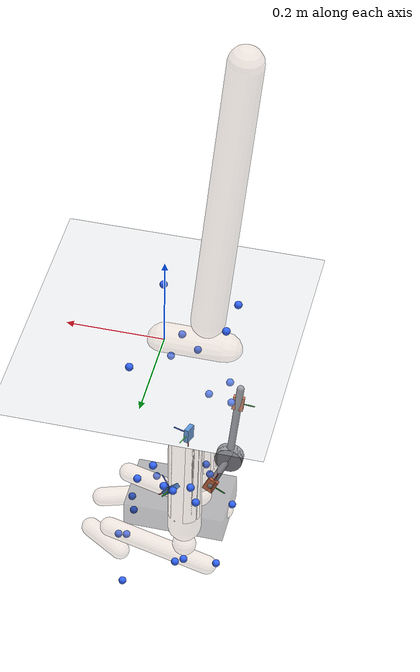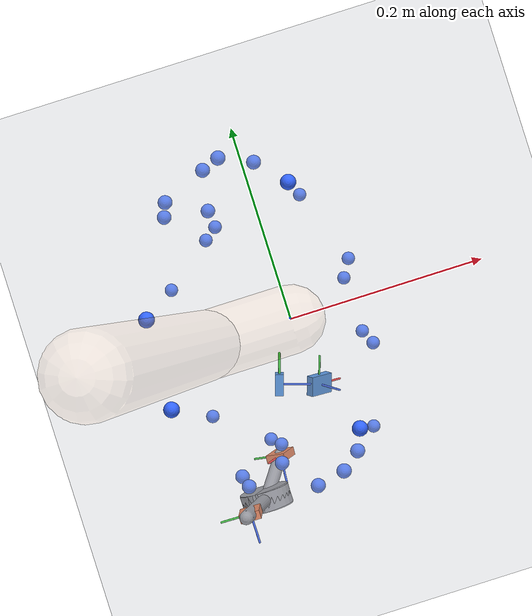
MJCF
<mujoco model="AB08">
  <compiler angle="radian" autolimits="true"/>
  <option timestep="0.005" gravity="0 0 -9.81"><flag contact="disable"/></option>
  <visual><global offwidth="1600" offheight="1200"/>
    <headlight ambient="0.55 0.55 0.55" diffuse="0.6 0.6 0.6"/></visual>
  <default><joint limited="false" damping="0"/><geom contype="0" conaffinity="0"/></default>
  <asset>
    <texture name="grid" type="2d" builtin="checker" rgb1="0.75 0.77 0.8" rgb2="0.85 0.87 0.9" width="512" height="512"/>
    <material name="grid" texture="grid" texrepeat="2 2" texuniform="true"/>
    <material name="skin" rgba="0.85 0.72 0.62 0.28"/>
  </asset>
  <worldbody>
    <light pos="0 0 4" dir="0 0 -1"/>
    <geom name="floor" type="plane" size="0 0 0.05" material="grid"/>
    <body name="pelvis" pos="0 0 0" quat="1 0 0 0">
      <joint name="pelvis_tx" type="slide" axis="1 0 0"/>
      <joint name="pelvis_ty" type="slide" axis="0 0 1"/>
      <joint name="pelvis_tz" type="slide" axis="0 -1 0"/>
      <joint name="pelvis_tilt" type="hinge" axis="0 -1 0"/>
      <joint name="pelvis_list" type="hinge" axis="1 0 0"/>
      <joint name="pelvis_rotation" type="hinge" axis="0 0 1"/>
      <inertial pos="-0.061301055 0 0" mass="11.3458" diaginertia="0.11345773 0.11345773 0.11345773"/>
      <geom type="capsule" fromto="0 0 0 -0.12260211 0 0" size="0.035" material="skin" mass="0"/>
      <site name="m_R_ASIS" pos="0.032729276 -0.12403509 0.030342535" size="0.008" rgba="0.2 0.4 1 1" group="2"/>
      <site name="m_L_ASIS" pos="0.038390685 0.12945459 0.036415428" size="0.008" rgba="0.2 0.4 1 1" group="2"/>
      <site name="m_L_PSIS" pos="-0.1326003 0.040568306 0.088827329" size="0.008" rgba="0.2 0.4 1 1" group="2"/>
      <site name="m_R_PSIS" pos="-0.13639476 -0.049620123 0.078649323" size="0.008" rgba="0.2 0.4 1 1" group="2"/>
      <body name="femur_r" pos="-0.061301055 -0.072399407 -0.057312584" quat="1 0 0 0">
        <joint name="hip_flexion_r" type="hinge" axis="0 -1 0"/>
        <joint name="hip_adduction_r" type="hinge" axis="1 0 0"/>
        <joint name="hip_rotation_r" type="hinge" axis="0 0 1"/>
        <inertial pos="0 0 -0.17443065" mass="8.96082" diaginertia="0.089608194 0.089608194 0.089608194"/>
        <geom type="capsule" fromto="0 0 0 0 0 -0.34886129" size="0.035" material="skin" mass="0"/>
        <site name="m_R_Thigh_Upper" pos="0.065402083 -0.096911585 -0.084521034" size="0.008" rgba="0.2 0.4 1 1" group="2"/>
        <site name="m_R_Thigh_Front" pos="0.085682136 -0.083705837 -0.13772673" size="0.008" rgba="0.2 0.4 1 1" group="2"/>
        <site name="m_R_Thigh_Rear" pos="0.033878038 -0.1061419 -0.12940572" size="0.008" rgba="0.2 0.4 1 1" group="2"/>
        <site name="m_R_Knee_Lat" pos="0.0018871106 -0.06330957 -0.42088846" size="0.008" rgba="0.2 0.4 1 1" group="2"/>
        <body name="tibia_r" pos="0 0 0" quat="1 0 0 0">
<geom name="gt_shank_axis_x" type="capsule" size="0.0012" fromto="0.02440 0.00870 -0.26100 0.02491 0.01156 -0.29588" rgba="1 0.1 0.1 1" contype="0" conaffinity="0" mass="0"/>
<geom name="gt_shank_axis_y" type="capsule" size="0.0012" fromto="0.02440 0.00870 -0.26100 0.03491 0.04196 -0.25812" rgba="0.1 0.8 0.1 1" contype="0" conaffinity="0" mass="0"/>
<geom name="gt_shank_axis_z" type="capsule" size="0.0012" fromto="0.02440 0.00870 -0.26100 0.05778 -0.00182 -0.26137" rgba="0.1 0.3 1 1" contype="0" conaffinity="0" mass="0"/>
<geom name="exo_shank_axis_x" type="capsule" size="0.0012" fromto="-0.05181 -0.12271 -0.27993 -0.05444 -0.12814 -0.24546" rgba="1 0.1 0.1 1" contype="0" conaffinity="0" mass="0"/>
<geom name="exo_shank_axis_y" type="capsule" size="0.0012" fromto="-0.05181 -0.12271 -0.27993 -0.08671 -0.12219 -0.28251" rgba="0.1 0.8 0.1 1" contype="0" conaffinity="0" mass="0"/>
<geom name="exo_shank_axis_z" type="capsule" size="0.0012" fromto="-0.05181 -0.12271 -0.27993 -0.05192 -0.15729 -0.28538" rgba="0.1 0.3 1 1" contype="0" conaffinity="0" mass="0"/>
<geom name="encoder_shank" type="cylinder" size="0.03 0.012" fromto="-0.03571 -0.13367 -0.44874 -0.03609 -0.10973 -0.44706" rgba="0.55 0.55 0.58 1" contype="0" conaffinity="0" mass="0"/>
<geom name="strut_shank" type="capsule" size="0.008" fromto="-0.03590 -0.12170 -0.44790 -0.05578 -0.12297 -0.23794" rgba="0.55 0.55 0.58 1" contype="0" conaffinity="0" mass="0"/>
          <joint name="knee_r_translation1" type="slide" axis="1 0 0"/>
          <joint name="knee_r_translation2" type="slide" axis="0 0 1"/>
          <joint name="knee_angle_r" type="hinge" axis="0 -1 0"/>
          <inertial pos="0 0 -0.1944606" mass="3.57175" diaginertia="0.03571746 0.03571746 0.03571746"/>
          <geom type="capsule" fromto="0 0 0 0 0 -0.38892121" size="0.035" material="skin" mass="0"/>
          <site name="m_R_Shank_Upper" pos="-0.040051153 -0.087899735 -0.18929611" size="0.008" rgba="0.2 0.4 1 1" group="2"/>
          <site name="m_R_Shank_Front" pos="0.0014681371 -0.075545175 -0.22111135" size="0.008" rgba="0.2 0.4 1 1" group="2"/>
          <site name="m_R_Shank_Rear" pos="-0.045845086 -0.077438271 -0.23653427" size="0.008" rgba="0.2 0.4 1 1" group="2"/>
          <site name="m_R_Ankle_Lat" pos="-0.0086556779 -0.054515349 -0.4395698" size="0.008" rgba="0.2 0.4 1 1" group="2"/>
          <site name="gt_shank_imu" type="box" size="0.016 0.012 0.005" pos="0.0244 0.0087 -0.261" quat="0.69896036 0.13691367 0.69756352 -0.07819326" rgba="0.16 0.47 0.84 1" group="1"/>
          <site name="exo_shank_imu" type="box" size="0.016 0.012 0.005" pos="-0.051806 -0.122712 -0.279934" quat="-0.44274347 -0.51613625 0.55806872 -0.47554275" rgba="0.92 0.41 0.20 1" group="1"/>
          <body name="talus_r" pos="0 0 -0.44787391" quat="1 0 0 0">
            <joint name="ankle_angle_r" type="hinge" axis="-0.10501355 -0.97912632 -0.17402245"/>
            <inertial pos="0 0 0" mass="0.0963384" diaginertia="0.00096338394 0.00096338394 0.00096338394"/>
            <geom type="sphere" size="0.025" material="skin" mass="0"/>
            <body name="calcn_r" pos="-0.050797234 -0.0082492125 -0.043693746" quat="1 0 0 0">
<geom name="gt_foot_axis_x" type="capsule" size="0.0012" fromto="0.11740 -0.00070 0.03220 0.14315 -0.00240 0.00855" rgba="1 0.1 0.1 1" contype="0" conaffinity="0" mass="0"/>
<geom name="gt_foot_axis_y" type="capsule" size="0.0012" fromto="0.11740 -0.00070 0.03220 0.12783 0.03146 0.04124" rgba="0.1 0.8 0.1 1" contype="0" conaffinity="0" mass="0"/>
<geom name="gt_foot_axis_z" type="capsule" size="0.0012" fromto="0.11740 -0.00070 0.03220 0.13869 -0.01440 0.05637" rgba="0.1 0.3 1 1" contype="0" conaffinity="0" mass="0"/>
<geom name="exo_foot_axis_x" type="capsule" size="0.0012" fromto="0.04527 -0.07065 -0.00635 0.03050 -0.07420 0.02518" rgba="1 0.1 0.1 1" contype="0" conaffinity="0" mass="0"/>
<geom name="exo_foot_axis_y" type="capsule" size="0.0012" fromto="0.04527 -0.07065 -0.00635 0.01364 -0.06618 -0.02066" rgba="0.1 0.8 0.1 1" contype="0" conaffinity="0" mass="0"/>
<geom name="exo_foot_axis_z" type="capsule" size="0.0012" fromto="0.04527 -0.07065 -0.00635 0.04270 -0.10518 -0.01144" rgba="0.1 0.3 1 1" contype="0" conaffinity="0" mass="0"/>
<geom name="encoder_foot" type="cylinder" size="0.03 0.012" fromto="0.01459 -0.12545 0.04267 0.01521 -0.10155 0.04473" rgba="0.55 0.55 0.58 1" contype="0" conaffinity="0" mass="0"/>
<geom name="strut_foot" type="capsule" size="0.008" fromto="0.01490 -0.11350 0.04370 0.04527 -0.07065 -0.00635" rgba="0.55 0.55 0.58 1" contype="0" conaffinity="0" mass="0"/>
<geom name="shoe" type="box" pos="0.09701 -0.00640 -0.00015" size="0.10802 0.06792 0.03000" rgba="0.15 0.15 0.18 0.35" contype="0" conaffinity="0" mass="0"/>
              <joint name="subtalar_angle_r" type="hinge" axis="0.78717961 0.12094949 0.60474746"/>
              <inertial pos="0.10476323 0 0.031428969" mass="1.20423" diaginertia="0.012042299 0.012042299 0.012042299"/>
              <geom type="capsule" fromto="0 0 0 0.20952646 0 0.062857937" size="0.02" material="skin" mass="0"/>
              <site name="m_R_Heel" pos="-0.018012527 0.00044364088 0.021611901" size="0.008" rgba="0.2 0.4 1 1" group="2"/>
              <site name="m_R_Toe_Lat" pos="0.16547209 -0.071166354 -0.010152418" size="0.008" rgba="0.2 0.4 1 1" group="2"/>
              <site name="m_R_Toe_Med" pos="0.18721884 0.044677749 -0.0024458822" size="0.008" rgba="0.2 0.4 1 1" group="2"/>
              <site name="m_R_Toe_Tip" pos="0.19502783 0.027206992 0.019885095" size="0.008" rgba="0.2 0.4 1 1" group="2"/>
              <site name="gt_foot_imu" type="box" size="0.016 0.012 0.005" pos="0.1174 -0.0007 0.0322" quat="0.91446732 0.17766264 0.35099483 -0.094805767" rgba="0.16 0.47 0.84 1" group="1"/>
              <site name="exo_foot_imu" type="box" size="0.016 0.012 0.005" pos="0.045269 -0.07065 -0.006347" quat="-0.37417549 -0.38598933 0.65101654 -0.53589401" rgba="0.92 0.41 0.20 1" group="1"/>
              <body name="toes_r" pos="0.18731665 -0.0011314429 -0.0020952646" quat="1 0 0 0">
                <joint name="mtp_angle_r" type="hinge" axis="-0.5809544 -0.81393611 0"/>
                <inertial pos="0.036248077 0.018333565 0.0062857937" mass="0.208669" diaginertia="0.0020866896 0.0020866896 0.0020866896"/>
                <geom type="capsule" fromto="0 0 0 0.072496154 0.03666713 0.012571587" size="0.02" material="skin" mass="0"/>
              </body>
            </body>
          </body>
        </body>
      </body>
      <body name="femur_l" pos="-0.061301055 0.072399407 -0.057312584" quat="1 0 0 0">
        <joint name="hip_flexion_l" type="hinge" axis="0 -1 0"/>
        <joint name="hip_adduction_l" type="hinge" axis="-1 0 0"/>
        <joint name="hip_rotation_l" type="hinge" axis="0 0 -1"/>
        <inertial pos="0 0 -0.17443065" mass="8.96082" diaginertia="0.089608194 0.089608194 0.089608194"/>
        <geom type="capsule" fromto="0 0 0 0 0 -0.34886129" size="0.035" material="skin" mass="0"/>
        <site name="m_L_Thigh_Upper" pos="0.03756774 0.11634667 -0.10503639" size="0.008" rgba="0.2 0.4 1 1" group="2"/>
        <site name="m_L_Thigh_Front" pos="0.072532826 0.10489511 -0.16302476" size="0.008" rgba="0.2 0.4 1 1" group="2"/>
        <site name="m_L_Thigh_Rear" pos="0.016793301 0.11304724 -0.16179479" size="0.008" rgba="0.2 0.4 1 1" group="2"/>
        <site name="m_L_Knee_Lat" pos="0.0040369888 0.064379632 -0.43535259" size="0.008" rgba="0.2 0.4 1 1" group="2"/>
        <body name="tibia_l" pos="0 0 0" quat="1 0 0 0">
          <joint name="knee_l_translation1" type="slide" axis="1 0 0"/>
          <joint name="knee_l_translation2" type="slide" axis="0 0 1"/>
          <joint name="knee_angle_l" type="hinge" axis="0 -1 0"/>
          <inertial pos="0 0 -0.1944606" mass="3.57175" diaginertia="0.03571746 0.03571746 0.03571746"/>
          <geom type="capsule" fromto="0 0 0 0 0 -0.38892121" size="0.035" material="skin" mass="0"/>
          <site name="m_L_Shank_Upper" pos="-0.033426637 0.092816107 -0.17446271" size="0.008" rgba="0.2 0.4 1 1" group="2"/>
          <site name="m_L_Shank_Front" pos="0.0075555972 0.072254897 -0.2152078" size="0.008" rgba="0.2 0.4 1 1" group="2"/>
          <site name="m_L_Shank_Rear" pos="-0.04160668 0.080801379 -0.22779728" size="0.008" rgba="0.2 0.4 1 1" group="2"/>
          <site name="m_L_Ankle_Lat" pos="-0.011229434 0.052513754 -0.43621009" size="0.008" rgba="0.2 0.4 1 1" group="2"/>
          <body name="talus_l" pos="0 0 -0.44787391" quat="1 0 0 0">
            <joint name="ankle_angle_l" type="hinge" axis="0.10501355 -0.97912632 0.17402245"/>
            <inertial pos="0 0 0" mass="0.0963384" diaginertia="0.00096338394 0.00096338394 0.00096338394"/>
            <geom type="sphere" size="0.025" material="skin" mass="0"/>
            <body name="calcn_l" pos="-0.050797234 0.0082492125 -0.043693746" quat="1 0 0 0">
              <joint name="subtalar_angle_l" type="hinge" axis="-0.78717961 0.12094949 -0.60474746"/>
              <inertial pos="0.10476323 0 0.031428969" mass="1.20423" diaginertia="0.012042299 0.012042299 0.012042299"/>
              <geom type="capsule" fromto="0 0 0 0.20952646 0 0.062857937" size="0.02" material="skin" mass="0"/>
              <site name="m_L_Heel" pos="-0.020217419 0.0010819277 0.011575676" size="0.008" rgba="0.2 0.4 1 1" group="2"/>
              <site name="m_L_Toe_Lat" pos="0.16457842 0.066898664 -0.020737873" size="0.008" rgba="0.2 0.4 1 1" group="2"/>
              <site name="m_L_Toe_Med" pos="0.18536099 -0.047730717 -0.0053629147" size="0.008" rgba="0.2 0.4 1 1" group="2"/>
              <site name="m_L_Toe_Tip" pos="0.19736376 -0.027066302 0.014808056" size="0.008" rgba="0.2 0.4 1 1" group="2"/>
              <body name="toes_l" pos="0.18731665 0.0011314429 -0.0020952646" quat="1 0 0 0">
                <joint name="mtp_angle_l" type="hinge" axis="0.5809544 -0.81393611 0"/>
                <inertial pos="0.036248077 -0.018333565 0.0062857937" mass="0.208669" diaginertia="0.0020866896 0.0020866896 0.0020866896"/>
                <geom type="capsule" fromto="0 0 0 0.072496154 -0.03666713 0.012571587" size="0.02" material="skin" mass="0"/>
              </body>
            </body>
          </body>
        </body>
      </body>
      <body name="torso" pos="-0.087312817 0 0.070665289" quat="1 0 0 0">
        <joint name="lumbar_extension" type="hinge" axis="0 -1 0"/>
        <joint name="lumbar_bending" type="hinge" axis="1 0 0"/>
        <joint name="lumbar_rotation" type="hinge" axis="0 0 1"/>
        <inertial pos="-0.029830658 0 0.31819368" mass="32.983" diaginertia="0.32982991 0.32982991 0.32982991"/>
        <geom type="capsule" fromto="0 0 0 -0.059661316 0 0.63638737" size="0.035" material="skin" mass="0"/>
      </body>
    </body>
  </worldbody>
  <sensor>
<accelerometer name="gt_foot_imu_acc" site="gt_foot_imu"/>
<gyro name="gt_foot_imu_gyr" site="gt_foot_imu"/>
<accelerometer name="exo_foot_imu_acc" site="exo_foot_imu"/>
<gyro name="exo_foot_imu_gyr" site="exo_foot_imu"/>
<accelerometer name="gt_shank_imu_acc" site="gt_shank_imu"/>
<gyro name="gt_shank_imu_gyr" site="gt_shank_imu"/>
<accelerometer name="exo_shank_imu_acc" site="exo_shank_imu"/>
<gyro name="exo_shank_imu_gyr" site="exo_shank_imu"/>
</sensor>
</mujoco>
